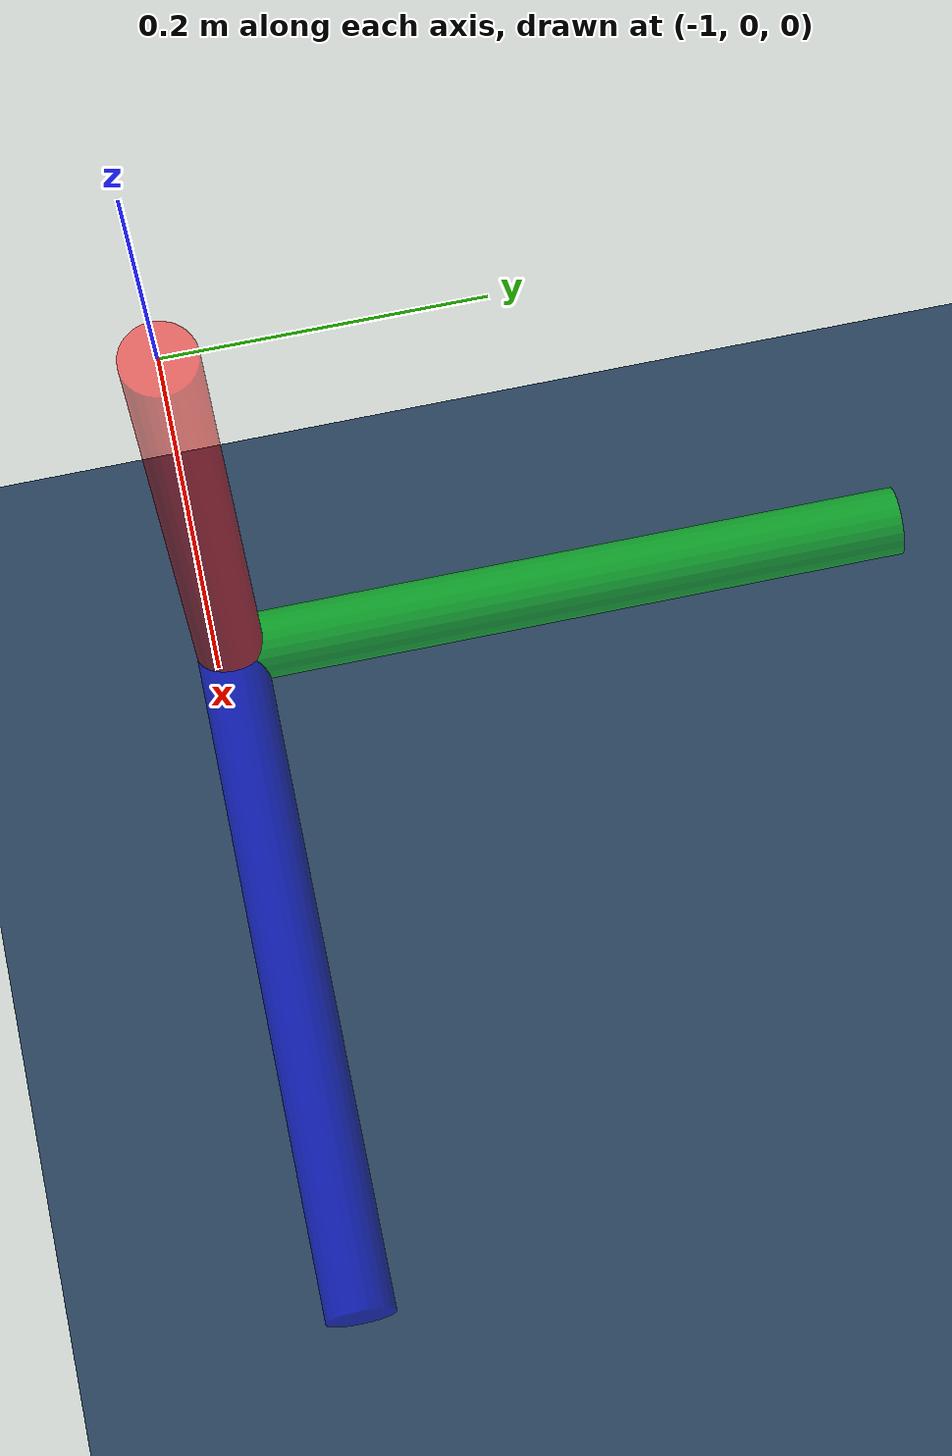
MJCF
<mujoco>

  <visual>
    <map force="0.1" zfar="30"/>
    <rgba haze="0.15 0.25 0.35 1"/>
    <global offwidth="2560" offheight="1440" elevation="-20" azimuth="120"/>
  </visual>

  <asset>
    <texture name="grid" type="2d" builtin="checker" width="512" height="512" rgb1=".1 .2 .3" rgb2=".2 .3 .4"/>
    <material name="grid" texture="grid" texrepeat="1 1" texuniform="true" reflectance=".2"/>
    <texture type="skybox" builtin="gradient" rgb1=".3 .5 .7" rgb2="0 0 0" width="32" height="512"/>
  </asset>

  <body name="humanoid" pos="0 0 -0.075"/>

  <worldbody>
    <light name="spotlight" mode="targetbodycom" target="humanoid" diffuse=".8 .8 .8" specular="0.3 0.3 0.3" pos="0 -6 4" cutoff="30"/>

    <geom name="X_axis_ref" type="cylinder" rgba="0 0 1 0.5" size="0.025" fromto="-1 0 -.5 -0.5 0 -.5" contype="0" conaffinity="0"/>
    <geom name="Y_axis_ref" type="cylinder" rgba="0 1 0 0.5" size="0.025" fromto="-1 0 -.5 -1 0.5 -.5" contype="0" conaffinity="0"/>
    <geom name="Z_axis_ref" type="cylinder" rgba="1 0 0 0.5" size="0.025" fromto="-1 0 -.5 -1 0 0" contype="0" conaffinity="0"/>

    <geom name="floor" pos="0 0 -0.6" size="0 0 .05" type="plane" material="grid" condim="3"/>
    <camera name="track" mode="trackcom" pos="0 -2 1" xyaxes="1 0 0 0 1 2" target="humanoid" />
  </worldbody>

</mujoco>
